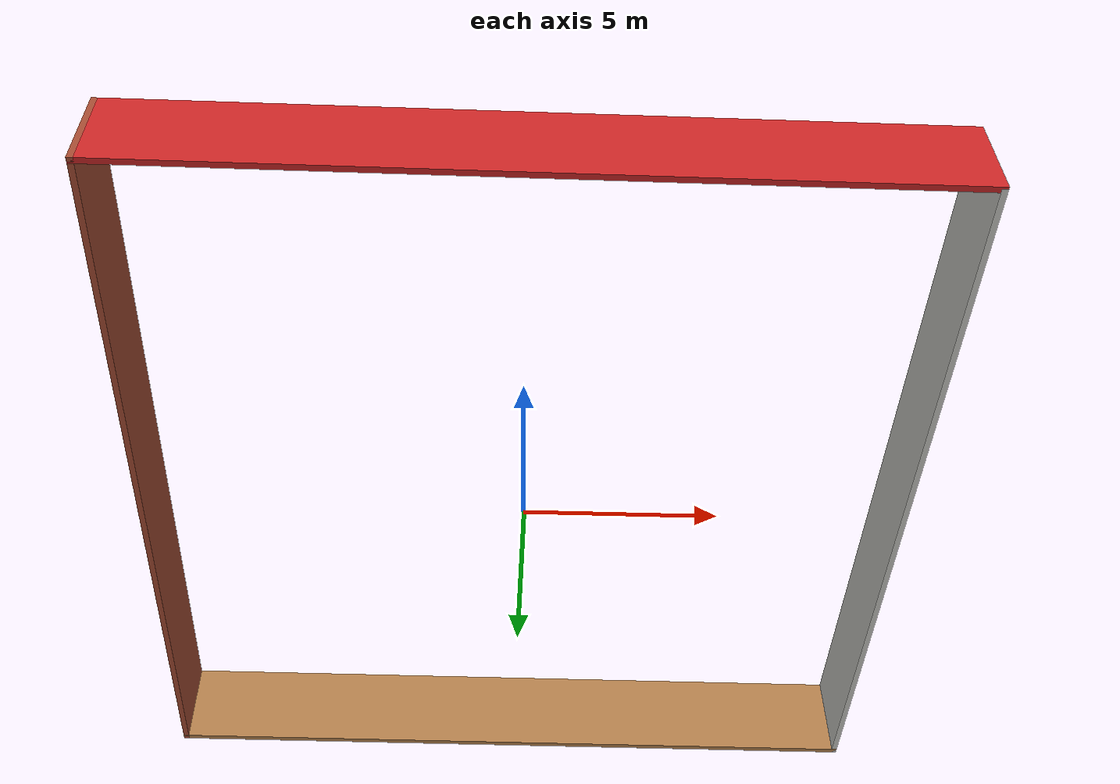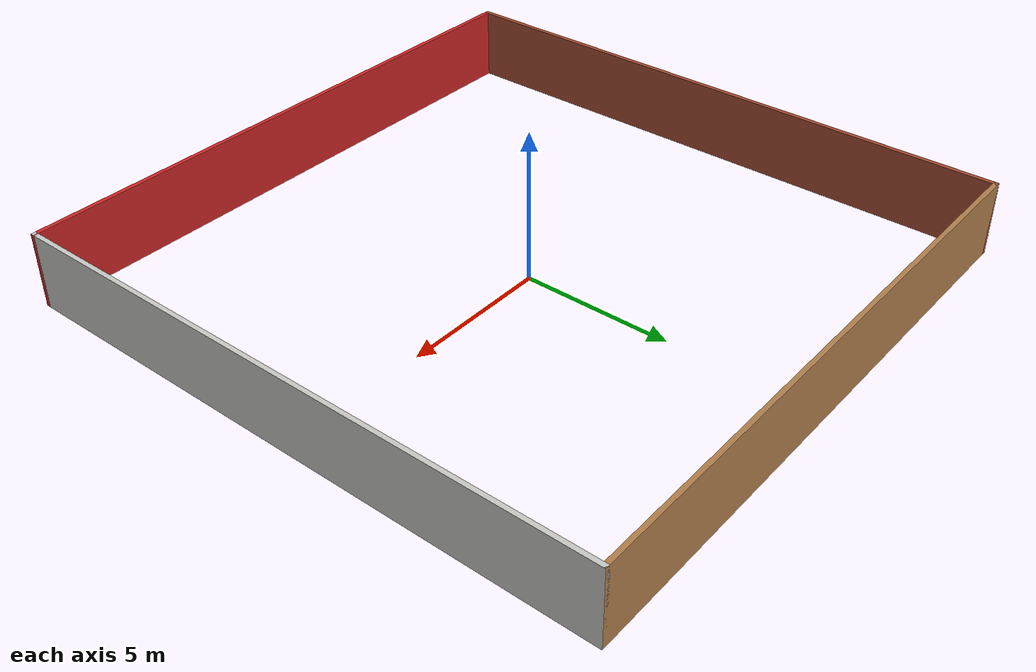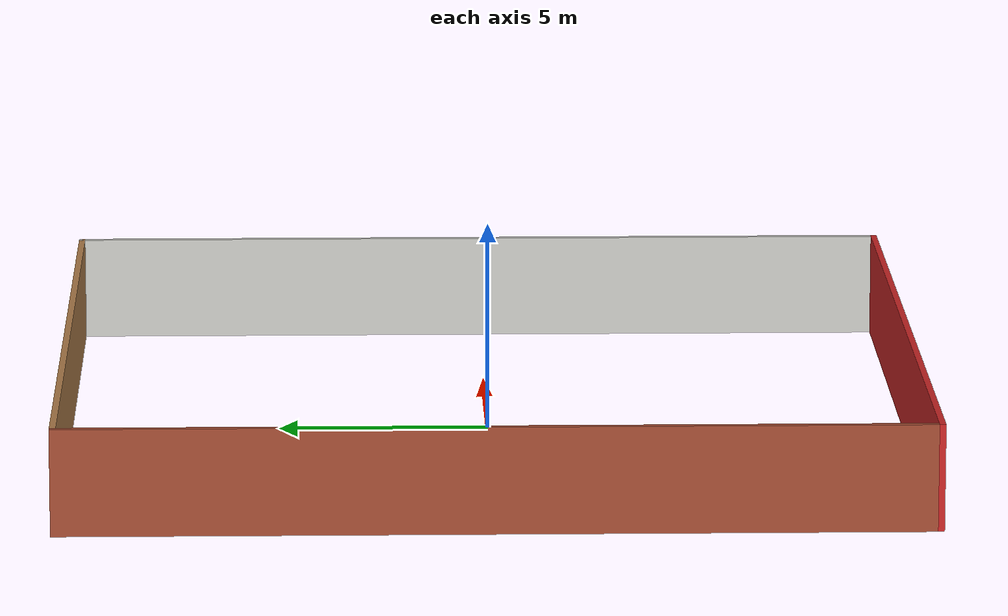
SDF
<?xml version='1.0'?>
<sdf version='1.6'>
  <model name='Simple_Room'>
    <link name='Wall_0'>
      <pose frame=''>0 10.05 0 0 -0 0</pose>
      <self_collide>0</self_collide>
      <kinematic>0</kinematic>
      <gravity>1</gravity>
      <inertial>
        <mass>1</mass>
        <pose frame=''>0 0 0 0 -0 0</pose>
        <inertia>
          <ixx>1</ixx>
          <ixy>0</ixy>
          <ixz>0</ixz>
          <iyy>1</iyy>
          <iyz>0</iyz>
          <izz>1</izz>
        </inertia>
      </inertial>
      <visual name='Wall_0_Visual'>
        <pose frame=''>0 0 1.25 0 -0 0</pose>
        <geometry>
          <box>
            <size>20 0.15 2.5</size>
          </box>
        </geometry>
        <material>
          <script>
            <uri>file://media/materials/scripts/gazebo.material</uri>
            <name>Gazebo/Wood</name>
          </script>
          <ambient>1 1 1 1</ambient>
          <diffuse>1 1 1 1</diffuse>
          <specular>0.2 0.2 0.2 1</specular>
          <emissive>0 0 0 1</emissive>
          <shader type='vertex'>
            <normal_map>__default__</normal_map>
          </shader>
        </material>
        <cast_shadows>1</cast_shadows>
        <transparency>0</transparency>
      </visual>
      <collision name='Wall_0_Collision'>
        <laser_retro>0</laser_retro>
        <max_contacts>10</max_contacts>
        <pose frame=''>0 0 1.25 0 -0 0</pose>
        <geometry>
          <box>
            <size>20 0.15 2.5</size>
          </box>
        </geometry>
        <surface>
          <friction>
            <ode>
              <mu>1</mu>
              <mu2>1</mu2>
              <fdir1>0 0 0</fdir1>
              <slip1>0</slip1>
              <slip2>0</slip2>
            </ode>
            <torsional>
              <coefficient>1</coefficient>
              <patch_radius>0</patch_radius>
              <surface_radius>0</surface_radius>
              <use_patch_radius>1</use_patch_radius>
              <ode>
                <slip>0</slip>
              </ode>
            </torsional>
          </friction>
          <bounce>
            <restitution_coefficient>0</restitution_coefficient>
            <threshold>1e+06</threshold>
          </bounce>
          <contact>
            <collide_without_contact>0</collide_without_contact>
            <collide_without_contact_bitmask>1</collide_without_contact_bitmask>
            <collide_bitmask>1</collide_bitmask>
            <ode>
              <soft_cfm>0</soft_cfm>
              <soft_erp>0.2</soft_erp>
              <kp>1e+13</kp>
              <kd>1</kd>
              <max_vel>0.01</max_vel>
              <min_depth>0</min_depth>
            </ode>
            <bullet>
              <split_impulse>1</split_impulse>
              <split_impulse_penetration_threshold>-0.01</split_impulse_penetration_threshold>
              <soft_cfm>0</soft_cfm>
              <soft_erp>0.2</soft_erp>
              <kp>1e+13</kp>
              <kd>1</kd>
            </bullet>
          </contact>
        </surface>
      </collision>
    </link>
    <link name='Wall_10'>
      <pose frame=''>0 -10.05 0 0 -0 3.14159</pose>
      <self_collide>0</self_collide>
      <kinematic>0</kinematic>
      <gravity>1</gravity>
      <inertial>
        <mass>1</mass>
        <pose frame=''>0 0 0 0 -0 0</pose>
        <inertia>
          <ixx>1</ixx>
          <ixy>0</ixy>
          <ixz>0</ixz>
          <iyy>1</iyy>
          <iyz>0</iyz>
          <izz>1</izz>
        </inertia>
      </inertial>
      <visual name='Wall_10_Visual'>
        <pose frame=''>0 0 1.25 0 -0 0</pose>
        <geometry>
          <box>
            <size>20 0.15 2.5</size>
          </box>
        </geometry>
        <material>
          <script>
            <uri>file://media/materials/scripts/gazebo.material</uri>
            <name>Gazebo/Red</name>
          </script>
          <ambient>1 1 1 1</ambient>
          <diffuse>1 1 1 1</diffuse>
          <specular>0.2 0.2 0.2 1</specular>
          <emissive>0 0 0 1</emissive>
          <shader type='vertex'>
            <normal_map>__default__</normal_map>
          </shader>
        </material>
        <cast_shadows>1</cast_shadows>
        <transparency>0</transparency>
      </visual>
      <collision name='Wall_10_Collision'>
        <laser_retro>0</laser_retro>
        <max_contacts>10</max_contacts>
        <pose frame=''>0 0 1.25 0 -0 0</pose>
        <geometry>
          <box>
            <size>20 0.15 2.5</size>
          </box>
        </geometry>
        <surface>
          <friction>
            <ode>
              <mu>1</mu>
              <mu2>1</mu2>
              <fdir1>0 0 0</fdir1>
              <slip1>0</slip1>
              <slip2>0</slip2>
            </ode>
            <torsional>
              <coefficient>1</coefficient>
              <patch_radius>0</patch_radius>
              <surface_radius>0</surface_radius>
              <use_patch_radius>1</use_patch_radius>
              <ode>
                <slip>0</slip>
              </ode>
            </torsional>
          </friction>
          <bounce>
            <restitution_coefficient>0</restitution_coefficient>
            <threshold>1e+06</threshold>
          </bounce>
          <contact>
            <collide_without_contact>0</collide_without_contact>
            <collide_without_contact_bitmask>1</collide_without_contact_bitmask>
            <collide_bitmask>1</collide_bitmask>
            <ode>
              <soft_cfm>0</soft_cfm>
              <soft_erp>0.2</soft_erp>
              <kp>1e+13</kp>
              <kd>1</kd>
              <max_vel>0.01</max_vel>
              <min_depth>0</min_depth>
            </ode>
            <bullet>
              <split_impulse>1</split_impulse>
              <split_impulse_penetration_threshold>-0.01</split_impulse_penetration_threshold>
              <soft_cfm>0</soft_cfm>
              <soft_erp>0.2</soft_erp>
              <kp>1e+13</kp>
              <kd>1</kd>
            </bullet>
          </contact>
        </surface>
      </collision>
    </link>
    <link name='Wall_11'>
      <pose frame=''>-9.925 0 0 0 -0 1.5708</pose>
      <self_collide>0</self_collide>
      <kinematic>0</kinematic>
      <visual name='Wall_11_Visual'>
        <pose frame=''>0 0 1.25 0 -0 0</pose>
        <geometry>
          <box>
            <size>20.25 0.15 2.5</size>
          </box>
        </geometry>
        <material>
          <script>
            <uri>file://media/materials/scripts/gazebo.material</uri>
            <name>Gazebo/Bricks</name>
          </script>
          <ambient>1 1 1 1</ambient>
          <diffuse>1 1 1 1</diffuse>
          <specular>0.2 0.2 0.2 1</specular>
          <emissive>0 0 0 1</emissive>
        </material>
        <cast_shadows>1</cast_shadows>
        <transparency>0</transparency>
      </visual>
      <collision name='Wall_11_Collision'>
        <laser_retro>0</laser_retro>
        <max_contacts>10</max_contacts>
        <pose frame=''>0 0 1.25 0 -0 0</pose>
        <geometry>
          <box>
            <size>20.25 0.15 2.5</size>
          </box>
        </geometry>
        <surface>
          <friction>
            <ode>
              <mu>1</mu>
              <mu2>1</mu2>
              <fdir1>0 0 0</fdir1>
              <slip1>0</slip1>
              <slip2>0</slip2>
            </ode>
            <torsional>
              <coefficient>1</coefficient>
              <patch_radius>0</patch_radius>
              <surface_radius>0</surface_radius>
              <use_patch_radius>1</use_patch_radius>
              <ode>
                <slip>0</slip>
              </ode>
            </torsional>
          </friction>
          <bounce>
            <restitution_coefficient>0</restitution_coefficient>
            <threshold>1e+06</threshold>
          </bounce>
          <contact>
            <collide_without_contact>0</collide_without_contact>
            <collide_without_contact_bitmask>1</collide_without_contact_bitmask>
            <collide_bitmask>1</collide_bitmask>
            <ode>
              <soft_cfm>0</soft_cfm>
              <soft_erp>0.2</soft_erp>
              <kp>1e+13</kp>
              <kd>1</kd>
              <max_vel>0.01</max_vel>
              <min_depth>0</min_depth>
            </ode>
            <bullet>
              <split_impulse>1</split_impulse>
              <split_impulse_penetration_threshold>-0.01</split_impulse_penetration_threshold>
              <soft_cfm>0</soft_cfm>
              <soft_erp>0.2</soft_erp>
              <kp>1e+13</kp>
              <kd>1</kd>
            </bullet>
          </contact>
        </surface>
      </collision>
    </link>
    <link name='Wall_9'>
      <pose frame=''>9.925 0 0 0 0 -1.5708</pose>
      <self_collide>0</self_collide>
      <kinematic>0</kinematic>
      <gravity>1</gravity>
      <inertial>
        <mass>1</mass>
        <pose frame=''>0 0 0 0 -0 0</pose>
        <inertia>
          <ixx>1</ixx>
          <ixy>0</ixy>
          <ixz>0</ixz>
          <iyy>1</iyy>
          <iyz>0</iyz>
          <izz>1</izz>
        </inertia>
      </inertial>
      <visual name='Wall_9_Visual'>
        <pose frame=''>0 0 1.25 0 -0 0</pose>
        <geometry>
          <box>
            <size>20.25 0.15 2.5</size>
          </box>
        </geometry>
        <material>
          <script>
            <uri>file://media/materials/scripts/gazebo.material</uri>
            <name>Gazebo/CeilingTiled</name>
          </script>
          <ambient>1 1 1 1</ambient>
          <diffuse>1 1 1 1</diffuse>
          <specular>0.2 0.2 0.2 1</specular>
          <emissive>0 0 0 1</emissive>
          <shader type='vertex'>
            <normal_map>__default__</normal_map>
          </shader>
        </material>
        <cast_shadows>1</cast_shadows>
        <transparency>0</transparency>
      </visual>
      <collision name='Wall_9_Collision'>
        <laser_retro>0</laser_retro>
        <max_contacts>10</max_contacts>
        <pose frame=''>0 0 1.25 0 -0 0</pose>
        <geometry>
          <box>
            <size>20.25 0.15 2.5</size>
          </box>
        </geometry>
        <surface>
          <friction>
            <ode>
              <mu>1</mu>
              <mu2>1</mu2>
              <fdir1>0 0 0</fdir1>
              <slip1>0</slip1>
              <slip2>0</slip2>
            </ode>
            <torsional>
              <coefficient>1</coefficient>
              <patch_radius>0</patch_radius>
              <surface_radius>0</surface_radius>
              <use_patch_radius>1</use_patch_radius>
              <ode>
                <slip>0</slip>
              </ode>
            </torsional>
          </friction>
          <bounce>
            <restitution_coefficient>0</restitution_coefficient>
            <threshold>1e+06</threshold>
          </bounce>
          <contact>
            <collide_without_contact>0</collide_without_contact>
            <collide_without_contact_bitmask>1</collide_without_contact_bitmask>
            <collide_bitmask>1</collide_bitmask>
            <ode>
              <soft_cfm>0</soft_cfm>
              <soft_erp>0.2</soft_erp>
              <kp>1e+13</kp>
              <kd>1</kd>
              <max_vel>0.01</max_vel>
              <min_depth>0</min_depth>
            </ode>
            <bullet>
              <split_impulse>1</split_impulse>
              <split_impulse_penetration_threshold>-0.01</split_impulse_penetration_threshold>
              <soft_cfm>0</soft_cfm>
              <soft_erp>0.2</soft_erp>
              <kp>1e+13</kp>
              <kd>1</kd>
            </bullet>
          </contact>
        </surface>
      </collision>
    </link>
    <static>1</static>
    <allow_auto_disable>1</allow_auto_disable>
  </model>
</sdf>
